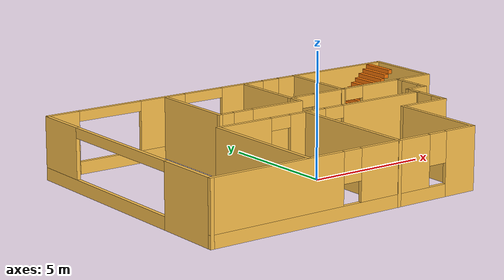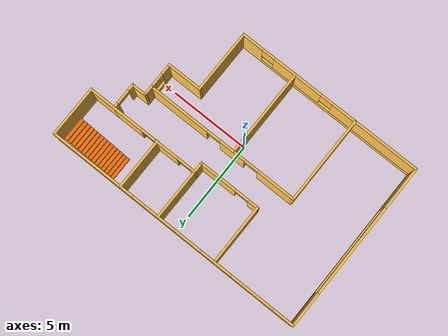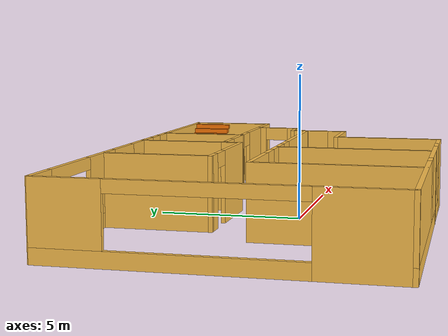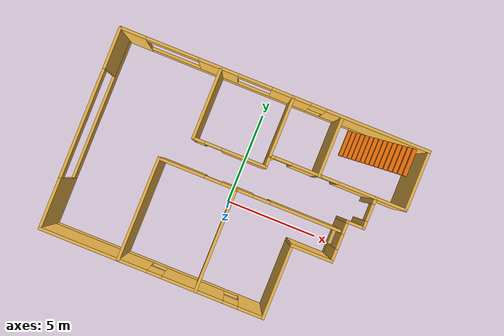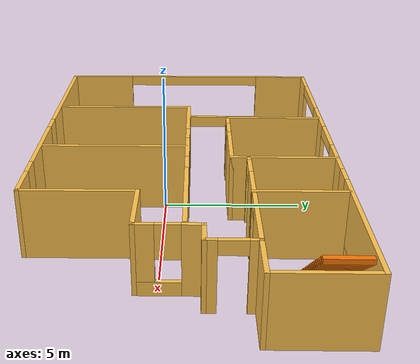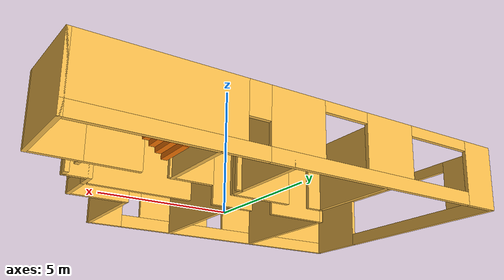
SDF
<?xml version='1.0'?>
<sdf version='1.6'>
  <model name='Simple_Flat'>
    <pose frame=''>0.045 0.765 0 0 -0 0</pose>
    <link name='Stairs_0'>
      <visual name='Stairs_0_Visual_0'>
        <pose frame=''>4.6346 4.48625 0.083333 0 -0 1.5708</pose>
        <geometry>
          <box>
            <size>1.4255 0.2042 0.166667</size>
          </box>
        </geometry>
        <material>
          <script>
            <uri>file://media/materials/scripts/gazebo.material</uri>
            <name>Gazebo/Grey</name>
          </script>
          <ambient>0.996078 0.47451 0.0196078 1</ambient>
        </material>
        <meta>
          <layer>0</layer>
        </meta>
      </visual>
      <collision name='Stairs_0_Collision_0'>
        <geometry>
          <box>
            <size>1.4255 0.2042 0.166667</size>
          </box>
        </geometry>
        <pose frame=''>4.6346 4.48625 0.083333 0 -0 1.5708</pose>
      </collision>
      <visual name='Stairs_0_Visual_1'>
        <pose frame=''>4.8388 4.48625 0.25 0 -0 1.5708</pose>
        <geometry>
          <box>
            <size>1.4255 0.2042 0.166667</size>
          </box>
        </geometry>
        <material>
          <script>
            <uri>file://media/materials/scripts/gazebo.material</uri>
            <name>Gazebo/Grey</name>
          </script>
          <ambient>0.996078 0.47451 0.0196078 1</ambient>
        </material>
        <meta>
          <layer>0</layer>
        </meta>
      </visual>
      <collision name='Stairs_0_Collision_1'>
        <geometry>
          <box>
            <size>1.4255 0.2042 0.166667</size>
          </box>
        </geometry>
        <pose frame=''>4.8388 4.48625 0.25 0 -0 1.5708</pose>
      </collision>
      <visual name='Stairs_0_Visual_2'>
        <pose frame=''>5.043 4.48625 0.416667 0 -0 1.5708</pose>
        <geometry>
          <box>
            <size>1.4255 0.2042 0.166667</size>
          </box>
        </geometry>
        <material>
          <script>
            <uri>file://media/materials/scripts/gazebo.material</uri>
            <name>Gazebo/Grey</name>
          </script>
          <ambient>0.996078 0.47451 0.0196078 1</ambient>
        </material>
        <meta>
          <layer>0</layer>
        </meta>
      </visual>
      <collision name='Stairs_0_Collision_2'>
        <geometry>
          <box>
            <size>1.4255 0.2042 0.166667</size>
          </box>
        </geometry>
        <pose frame=''>5.043 4.48625 0.416667 0 -0 1.5708</pose>
      </collision>
      <visual name='Stairs_0_Visual_3'>
        <pose frame=''>5.2472 4.48625 0.583333 0 -0 1.5708</pose>
        <geometry>
          <box>
            <size>1.4255 0.2042 0.166667</size>
          </box>
        </geometry>
        <material>
          <script>
            <uri>file://media/materials/scripts/gazebo.material</uri>
            <name>Gazebo/Grey</name>
          </script>
          <ambient>0.996078 0.47451 0.0196078 1</ambient>
        </material>
        <meta>
          <layer>0</layer>
        </meta>
      </visual>
      <collision name='Stairs_0_Collision_3'>
        <geometry>
          <box>
            <size>1.4255 0.2042 0.166667</size>
          </box>
        </geometry>
        <pose frame=''>5.2472 4.48625 0.583333 0 -0 1.5708</pose>
      </collision>
      <visual name='Stairs_0_Visual_4'>
        <pose frame=''>5.4514 4.48625 0.75 0 -0 1.5708</pose>
        <geometry>
          <box>
            <size>1.4255 0.2042 0.166667</size>
          </box>
        </geometry>
        <material>
          <script>
            <uri>file://media/materials/scripts/gazebo.material</uri>
            <name>Gazebo/Grey</name>
          </script>
          <ambient>0.996078 0.47451 0.0196078 1</ambient>
        </material>
        <meta>
          <layer>0</layer>
        </meta>
      </visual>
      <collision name='Stairs_0_Collision_4'>
        <geometry>
          <box>
            <size>1.4255 0.2042 0.166667</size>
          </box>
        </geometry>
        <pose frame=''>5.4514 4.48625 0.75 0 -0 1.5708</pose>
      </collision>
      <visual name='Stairs_0_Visual_5'>
        <pose frame=''>5.6556 4.48625 0.916667 0 -0 1.5708</pose>
        <geometry>
          <box>
            <size>1.4255 0.2042 0.166667</size>
          </box>
        </geometry>
        <material>
          <script>
            <uri>file://media/materials/scripts/gazebo.material</uri>
            <name>Gazebo/Grey</name>
          </script>
          <ambient>0.996078 0.47451 0.0196078 1</ambient>
        </material>
        <meta>
          <layer>0</layer>
        </meta>
      </visual>
      <collision name='Stairs_0_Collision_5'>
        <geometry>
          <box>
            <size>1.4255 0.2042 0.166667</size>
          </box>
        </geometry>
        <pose frame=''>5.6556 4.48625 0.916667 0 -0 1.5708</pose>
      </collision>
      <visual name='Stairs_0_Visual_6'>
        <pose frame=''>5.8598 4.48625 1.08333 0 -0 1.5708</pose>
        <geometry>
          <box>
            <size>1.4255 0.2042 0.166667</size>
          </box>
        </geometry>
        <material>
          <script>
            <uri>file://media/materials/scripts/gazebo.material</uri>
            <name>Gazebo/Grey</name>
          </script>
          <ambient>0.996078 0.47451 0.0196078 1</ambient>
        </material>
        <meta>
          <layer>0</layer>
        </meta>
      </visual>
      <collision name='Stairs_0_Collision_6'>
        <geometry>
          <box>
            <size>1.4255 0.2042 0.166667</size>
          </box>
        </geometry>
        <pose frame=''>5.8598 4.48625 1.08333 0 -0 1.5708</pose>
      </collision>
      <visual name='Stairs_0_Visual_7'>
        <pose frame=''>6.064 4.48625 1.25 0 -0 1.5708</pose>
        <geometry>
          <box>
            <size>1.4255 0.2042 0.166667</size>
          </box>
        </geometry>
        <material>
          <script>
            <uri>file://media/materials/scripts/gazebo.material</uri>
            <name>Gazebo/Grey</name>
          </script>
          <ambient>0.996078 0.47451 0.0196078 1</ambient>
        </material>
        <meta>
          <layer>0</layer>
        </meta>
      </visual>
      <collision name='Stairs_0_Collision_7'>
        <geometry>
          <box>
            <size>1.4255 0.2042 0.166667</size>
          </box>
        </geometry>
        <pose frame=''>6.064 4.48625 1.25 0 -0 1.5708</pose>
      </collision>
      <visual name='Stairs_0_Visual_8'>
        <pose frame=''>6.2682 4.48625 1.41667 0 -0 1.5708</pose>
        <geometry>
          <box>
            <size>1.4255 0.2042 0.166667</size>
          </box>
        </geometry>
        <material>
          <script>
            <uri>file://media/materials/scripts/gazebo.material</uri>
            <name>Gazebo/Grey</name>
          </script>
          <ambient>0.996078 0.47451 0.0196078 1</ambient>
        </material>
        <meta>
          <layer>0</layer>
        </meta>
      </visual>
      <collision name='Stairs_0_Collision_8'>
        <geometry>
          <box>
            <size>1.4255 0.2042 0.166667</size>
          </box>
        </geometry>
        <pose frame=''>6.2682 4.48625 1.41667 0 -0 1.5708</pose>
      </collision>
      <visual name='Stairs_0_Visual_9'>
        <pose frame=''>6.4724 4.48625 1.58333 0 -0 1.5708</pose>
        <geometry>
          <box>
            <size>1.4255 0.2042 0.166667</size>
          </box>
        </geometry>
        <material>
          <script>
            <uri>file://media/materials/scripts/gazebo.material</uri>
            <name>Gazebo/Grey</name>
          </script>
          <ambient>0.996078 0.47451 0.0196078 1</ambient>
        </material>
        <meta>
          <layer>0</layer>
        </meta>
      </visual>
      <collision name='Stairs_0_Collision_9'>
        <geometry>
          <box>
            <size>1.4255 0.2042 0.166667</size>
          </box>
        </geometry>
        <pose frame=''>6.4724 4.48625 1.58333 0 -0 1.5708</pose>
      </collision>
      <visual name='Stairs_0_Visual_10'>
        <pose frame=''>6.6766 4.48625 1.75 0 -0 1.5708</pose>
        <geometry>
          <box>
            <size>1.4255 0.2042 0.166667</size>
          </box>
        </geometry>
        <material>
          <script>
            <uri>file://media/materials/scripts/gazebo.material</uri>
            <name>Gazebo/Grey</name>
          </script>
          <ambient>0.996078 0.47451 0.0196078 1</ambient>
        </material>
        <meta>
          <layer>0</layer>
        </meta>
      </visual>
      <collision name='Stairs_0_Collision_10'>
        <geometry>
          <box>
            <size>1.4255 0.2042 0.166667</size>
          </box>
        </geometry>
        <pose frame=''>6.6766 4.48625 1.75 0 -0 1.5708</pose>
      </collision>
      <visual name='Stairs_0_Visual_11'>
        <pose frame=''>6.8808 4.48625 1.91667 0 -0 1.5708</pose>
        <geometry>
          <box>
            <size>1.4255 0.2042 0.166667</size>
          </box>
        </geometry>
        <material>
          <script>
            <uri>file://media/materials/scripts/gazebo.material</uri>
            <name>Gazebo/Grey</name>
          </script>
          <ambient>0.996078 0.47451 0.0196078 1</ambient>
        </material>
        <meta>
          <layer>0</layer>
        </meta>
      </visual>
      <collision name='Stairs_0_Collision_11'>
        <geometry>
          <box>
            <size>1.4255 0.2042 0.166667</size>
          </box>
        </geometry>
        <pose frame=''>6.8808 4.48625 1.91667 0 -0 1.5708</pose>
      </collision>
      <visual name='Stairs_0_Visual_12'>
        <pose frame=''>7.085 4.48625 2.08333 0 -0 1.5708</pose>
        <geometry>
          <box>
            <size>1.4255 0.2042 0.166667</size>
          </box>
        </geometry>
        <material>
          <script>
            <uri>file://media/materials/scripts/gazebo.material</uri>
            <name>Gazebo/Grey</name>
          </script>
          <ambient>0.996078 0.47451 0.0196078 1</ambient>
        </material>
        <meta>
          <layer>0</layer>
        </meta>
      </visual>
      <collision name='Stairs_0_Collision_12'>
        <geometry>
          <box>
            <size>1.4255 0.2042 0.166667</size>
          </box>
        </geometry>
        <pose frame=''>7.085 4.48625 2.08333 0 -0 1.5708</pose>
      </collision>
      <visual name='Stairs_0_Visual_13'>
        <pose frame=''>7.2892 4.48625 2.25 0 -0 1.5708</pose>
        <geometry>
          <box>
            <size>1.4255 0.2042 0.166667</size>
          </box>
        </geometry>
        <material>
          <script>
            <uri>file://media/materials/scripts/gazebo.material</uri>
            <name>Gazebo/Grey</name>
          </script>
          <ambient>0.996078 0.47451 0.0196078 1</ambient>
        </material>
        <meta>
          <layer>0</layer>
        </meta>
      </visual>
      <collision name='Stairs_0_Collision_13'>
        <geometry>
          <box>
            <size>1.4255 0.2042 0.166667</size>
          </box>
        </geometry>
        <pose frame=''>7.2892 4.48625 2.25 0 -0 1.5708</pose>
      </collision>
      <visual name='Stairs_0_Visual_14'>
        <pose frame=''>7.4934 4.48625 2.41667 0 -0 1.5708</pose>
        <geometry>
          <box>
            <size>1.4255 0.2042 0.166667</size>
          </box>
        </geometry>
        <material>
          <script>
            <uri>file://media/materials/scripts/gazebo.material</uri>
            <name>Gazebo/Grey</name>
          </script>
          <ambient>0.996078 0.47451 0.0196078 1</ambient>
        </material>
        <meta>
          <layer>0</layer>
        </meta>
      </visual>
      <collision name='Stairs_0_Collision_14'>
        <geometry>
          <box>
            <size>1.4255 0.2042 0.166667</size>
          </box>
        </geometry>
        <pose frame=''>7.4934 4.48625 2.41667 0 -0 1.5708</pose>
      </collision>
    </link>
    <link name='Wall_0'>
      <pose frame=''>0.025 5.3315 0 0 -0 0</pose>
      <visual name='Wall_0_Visual_0'>
        <pose frame=''>-7.5555 0 1.25 0 -0 0</pose>
        <geometry>
          <box>
            <size>1.389 0.15 2.5</size>
          </box>
        </geometry>
        <material>
          <script>
            <uri>file://media/materials/scripts/gazebo.material</uri>
            <name>Gazebo/Grey</name>
          </script>
          <ambient>1 0.764706 0.305882 1</ambient>
        </material>
        <meta>
          <layer>0</layer>
        </meta>
      </visual>
      <collision name='Wall_0_Collision_0'>
        <geometry>
          <box>
            <size>1.389 0.15 2.5</size>
          </box>
        </geometry>
        <pose frame=''>-7.5555 0 1.25 0 -0 0</pose>
      </collision>
      <visual name='Wall_0_Visual_1'>
        <pose frame=''>-2.474 0 0.25 0 -0 0</pose>
        <geometry>
          <box>
            <size>8.774 0.15 0.5</size>
          </box>
        </geometry>
        <material>
          <script>
            <uri>file://media/materials/scripts/gazebo.material</uri>
            <name>Gazebo/Grey</name>
          </script>
          <ambient>1 0.764706 0.305882 1</ambient>
        </material>
        <meta>
          <layer>0</layer>
        </meta>
      </visual>
      <collision name='Wall_0_Collision_1'>
        <geometry>
          <box>
            <size>8.774 0.15 0.5</size>
          </box>
        </geometry>
        <pose frame=''>-2.474 0 0.25 0 -0 0</pose>
      </collision>
      <visual name='Wall_0_Visual_2'>
        <pose frame=''>5.0815 0 0.25 0 -0 0</pose>
        <geometry>
          <box>
            <size>6.337 0.15 0.5</size>
          </box>
        </geometry>
        <material>
          <script>
            <uri>file://media/materials/scripts/gazebo.material</uri>
            <name>Gazebo/Grey</name>
          </script>
          <ambient>1 0.764706 0.305882 1</ambient>
        </material>
        <meta>
          <layer>0</layer>
        </meta>
      </visual>
      <collision name='Wall_0_Collision_2'>
        <geometry>
          <box>
            <size>6.337 0.15 0.5</size>
          </box>
        </geometry>
        <pose frame=''>5.0815 0 0.25 0 -0 0</pose>
      </collision>
      <visual name='Wall_0_Visual_3'>
        <pose frame=''>5.4815 0 1.5 0 -0 0</pose>
        <geometry>
          <box>
            <size>5.537 0.15 2</size>
          </box>
        </geometry>
        <material>
          <script>
            <uri>file://media/materials/scripts/gazebo.material</uri>
            <name>Gazebo/Grey</name>
          </script>
          <ambient>1 0.764706 0.305882 1</ambient>
        </material>
        <meta>
          <layer>0</layer>
        </meta>
      </visual>
      <collision name='Wall_0_Collision_3'>
        <geometry>
          <box>
            <size>5.537 0.15 2</size>
          </box>
        </geometry>
        <pose frame=''>5.4815 0 1.5 0 -0 0</pose>
      </collision>
      <visual name='Wall_0_Visual_4'>
        <pose frame=''>-3.0145 0 1.5 0 -0 0</pose>
        <geometry>
          <box>
            <size>2.093 0.15 2</size>
          </box>
        </geometry>
        <material>
          <script>
            <uri>file://media/materials/scripts/gazebo.material</uri>
            <name>Gazebo/Grey</name>
          </script>
          <ambient>1 0.764706 0.305882 1</ambient>
        </material>
        <meta>
          <layer>0</layer>
        </meta>
      </visual>
      <collision name='Wall_0_Collision_4'>
        <geometry>
          <box>
            <size>2.093 0.15 2</size>
          </box>
        </geometry>
        <pose frame=''>-3.0145 0 1.5 0 -0 0</pose>
      </collision>
      <visual name='Wall_0_Visual_5'>
        <pose frame=''>0.8725 0 1.5 0 -0 0</pose>
        <geometry>
          <box>
            <size>2.081 0.15 2</size>
          </box>
        </geometry>
        <material>
          <script>
            <uri>file://media/materials/scripts/gazebo.material</uri>
            <name>Gazebo/Grey</name>
          </script>
          <ambient>1 0.764706 0.305882 1</ambient>
        </material>
        <meta>
          <layer>0</layer>
        </meta>
      </visual>
      <collision name='Wall_0_Collision_5'>
        <geometry>
          <box>
            <size>2.081 0.15 2</size>
          </box>
        </geometry>
        <pose frame=''>0.8725 0 1.5 0 -0 0</pose>
      </collision>
      <visual name='Wall_0_Visual_6'>
        <pose frame=''>0.8725 0 1.5 0 -0 0</pose>
        <geometry>
          <box>
            <size>2.081 0.15 2</size>
          </box>
        </geometry>
        <material>
          <script>
            <uri>file://media/materials/scripts/gazebo.material</uri>
            <name>Gazebo/Grey</name>
          </script>
          <ambient>1 0.764706 0.305882 1</ambient>
        </material>
        <meta>
          <layer>0</layer>
        </meta>
      </visual>
      <collision name='Wall_0_Collision_6'>
        <geometry>
          <box>
            <size>2.081 0.15 2</size>
          </box>
        </geometry>
        <pose frame=''>0.8725 0 1.5 0 -0 0</pose>
      </collision>
      <visual name='Wall_0_Visual_7'>
        <pose frame=''>2.313 0 1.9 0 -0 0</pose>
        <geometry>
          <box>
            <size>0.8 0.15 1.2</size>
          </box>
        </geometry>
        <material>
          <script>
            <uri>file://media/materials/scripts/gazebo.material</uri>
            <name>Gazebo/Grey</name>
          </script>
          <ambient>1 0.764706 0.305882 1</ambient>
        </material>
        <meta>
          <layer>0</layer>
        </meta>
      </visual>
      <collision name='Wall_0_Collision_7'>
        <geometry>
          <box>
            <size>0.8 0.15 1.2</size>
          </box>
        </geometry>
        <pose frame=''>2.313 0 1.9 0 -0 0</pose>
      </collision>
      <visual name='Wall_0_Visual_8'>
        <pose frame=''>2.313 0 1.9 0 -0 0</pose>
        <geometry>
          <box>
            <size>0.8 0.15 1.2</size>
          </box>
        </geometry>
        <material>
          <script>
            <uri>file://media/materials/scripts/gazebo.material</uri>
            <name>Gazebo/Grey</name>
          </script>
          <ambient>1 0.764706 0.305882 1</ambient>
        </material>
        <meta>
          <layer>0</layer>
        </meta>
      </visual>
      <collision name='Wall_0_Collision_8'>
        <geometry>
          <box>
            <size>0.8 0.15 1.2</size>
          </box>
        </geometry>
        <pose frame=''>2.313 0 1.9 0 -0 0</pose>
      </collision>
      <visual name='Wall_0_Visual_9'>
        <pose frame=''>-5.461 0 2.3 0 -0 0</pose>
        <geometry>
          <box>
            <size>2.8 0.15 0.4</size>
          </box>
        </geometry>
        <material>
          <script>
            <uri>file://media/materials/scripts/gazebo.material</uri>
            <name>Gazebo/Grey</name>
          </script>
          <ambient>1 0.764706 0.305882 1</ambient>
        </material>
        <meta>
          <layer>0</layer>
        </meta>
      </visual>
      <collision name='Wall_0_Collision_9'>
        <geometry>
          <box>
            <size>2.8 0.15 0.4</size>
          </box>
        </geometry>
        <pose frame=''>-5.461 0 2.3 0 -0 0</pose>
      </collision>
      <visual name='Wall_0_Visual_10'>
        <pose frame=''>-1.068 0 2.3 0 -0 0</pose>
        <geometry>
          <box>
            <size>1.8 0.15 0.4</size>
          </box>
        </geometry>
        <material>
          <script>
            <uri>file://media/materials/scripts/gazebo.material</uri>
            <name>Gazebo/Grey</name>
          </script>
          <ambient>1 0.764706 0.305882 1</ambient>
        </material>
        <meta>
          <layer>0</layer>
        </meta>
      </visual>
      <collision name='Wall_0_Collision_10'>
        <geometry>
          <box>
            <size>1.8 0.15 0.4</size>
          </box>
        </geometry>
        <pose frame=''>-1.068 0 2.3 0 -0 0</pose>
      </collision>
    </link>
    <link name='Wall_1'>
      <collision name='Wall_1_Collision'>
        <geometry>
          <box>
            <size>3.25 0.15 2.5</size>
          </box>
        </geometry>
        <pose frame=''>0 0 1.25 0 -0 0</pose>
      </collision>
      <visual name='Wall_1_Visual'>
        <pose frame=''>0 0 1.25 0 -0 0</pose>
        <geometry>
          <box>
            <size>3.25 0.15 2.5</size>
          </box>
        </geometry>
        <material>
          <script>
            <uri>file://media/materials/scripts/gazebo.material</uri>
            <name>Gazebo/Grey</name>
          </script>
          <ambient>1 0.764706 0.305882 1</ambient>
        </material>
        <meta>
          <layer>0</layer>
        </meta>
      </visual>
      <pose frame=''>8.2 3.7815 0 0 0 -1.5708</pose>
    </link>
    <link name='Wall_11'>
      <collision name='Wall_11_Collision'>
        <geometry>
          <box>
            <size>5.5 0.15 2.5</size>
          </box>
        </geometry>
        <pose frame=''>0 0 1.25 0 -0 0</pose>
      </collision>
      <visual name='Wall_11_Visual'>
        <pose frame=''>0 0 1.25 0 -0 0</pose>
        <geometry>
          <box>
            <size>5.5 0.15 2.5</size>
          </box>
        </geometry>
        <material>
          <script>
            <uri>file://media/materials/scripts/gazebo.material</uri>
            <name>Gazebo/Grey</name>
          </script>
          <ambient>1 0.764706 0.305882 1</ambient>
        </material>
        <meta>
          <layer>0</layer>
        </meta>
      </visual>
      <pose frame=''>-4.0445 -2.608 0 0 -0 1.5708</pose>
    </link>
    <link name='Wall_12'>
      <pose frame=''>0.7555 0.067 0 0 -0 0</pose>
      <visual name='Wall_12_Visual_0'>
        <pose frame=''>-3.63075 0 1.25 0 -0 0</pose>
        <geometry>
          <box>
            <size>2.4885 0.15 2.5</size>
          </box>
        </geometry>
        <material>
          <script>
            <uri>file://media/materials/scripts/gazebo.material</uri>
            <name>Gazebo/Grey</name>
          </script>
          <ambient>1 0.764706 0.305882 1</ambient>
        </material>
        <meta>
          <layer>0</layer>
        </meta>
      </visual>
      <collision name='Wall_12_Collision_0'>
        <geometry>
          <box>
            <size>2.4885 0.15 2.5</size>
          </box>
        </geometry>
        <pose frame=''>-3.63075 0 1.25 0 -0 0</pose>
      </collision>
      <visual name='Wall_12_Visual_1'>
        <pose frame=''>-0.637 0 1.25 0 -0 0</pose>
        <geometry>
          <box>
            <size>1.699 0.15 2.5</size>
          </box>
        </geometry>
        <material>
          <script>
            <uri>file://media/materials/scripts/gazebo.material</uri>
            <name>Gazebo/Grey</name>
          </script>
          <ambient>1 0.764706 0.305882 1</ambient>
        </material>
        <meta>
          <layer>0</layer>
        </meta>
      </visual>
      <collision name='Wall_12_Collision_1'>
        <geometry>
          <box>
            <size>1.699 0.15 2.5</size>
          </box>
        </geometry>
        <pose frame=''>-0.637 0 1.25 0 -0 0</pose>
      </collision>
      <visual name='Wall_12_Visual_2'>
        <pose frame=''>2.99375 0 1.25 0 -0 0</pose>
        <geometry>
          <box>
            <size>3.7625 0.15 2.5</size>
          </box>
        </geometry>
        <material>
          <script>
            <uri>file://media/materials/scripts/gazebo.material</uri>
            <name>Gazebo/Grey</name>
          </script>
          <ambient>1 0.764706 0.305882 1</ambient>
        </material>
        <meta>
          <layer>0</layer>
        </meta>
      </visual>
      <collision name='Wall_12_Collision_2'>
        <geometry>
          <box>
            <size>3.7625 0.15 2.5</size>
          </box>
        </geometry>
        <pose frame=''>2.99375 0 1.25 0 -0 0</pose>
      </collision>
      <visual name='Wall_12_Visual_3'>
        <pose frame=''>-1.9365 0 2.25 0 -0 0</pose>
        <geometry>
          <box>
            <size>0.9 0.15 0.5</size>
          </box>
        </geometry>
        <material>
          <script>
            <uri>file://media/materials/scripts/gazebo.material</uri>
            <name>Gazebo/Grey</name>
          </script>
          <ambient>1 0.764706 0.305882 1</ambient>
        </material>
        <meta>
          <layer>0</layer>
        </meta>
      </visual>
      <collision name='Wall_12_Collision_3'>
        <geometry>
          <box>
            <size>0.9 0.15 0.5</size>
          </box>
        </geometry>
        <pose frame=''>-1.9365 0 2.25 0 -0 0</pose>
      </collision>
      <visual name='Wall_12_Visual_4'>
        <pose frame=''>0.6625 0 2.25 0 -0 0</pose>
        <geometry>
          <box>
            <size>0.9 0.15 0.5</size>
          </box>
        </geometry>
        <material>
          <script>
            <uri>file://media/materials/scripts/gazebo.material</uri>
            <name>Gazebo/Grey</name>
          </script>
          <ambient>1 0.764706 0.305882 1</ambient>
        </material>
        <meta>
          <layer>0</layer>
        </meta>
      </visual>
      <collision name='Wall_12_Collision_4'>
        <geometry>
          <box>
            <size>0.9 0.15 0.5</size>
          </box>
        </geometry>
        <pose frame=''>0.6625 0 2.25 0 -0 0</pose>
      </collision>
    </link>
    <link name='Wall_14'>
      <collision name='Wall_14_Collision'>
        <geometry>
          <box>
            <size>5.5 0.15 2.5</size>
          </box>
        </geometry>
        <pose frame=''>0 0 1.25 0 -0 0</pose>
      </collision>
      <visual name='Wall_14_Visual'>
        <pose frame=''>0 0 1.25 0 -0 0</pose>
        <geometry>
          <box>
            <size>5.5 0.15 2.5</size>
          </box>
        </geometry>
        <material>
          <script>
            <uri>file://media/materials/scripts/gazebo.material</uri>
            <name>Gazebo/Grey</name>
          </script>
          <ambient>1 0.764706 0.305882 1</ambient>
        </material>
        <meta>
          <layer>0</layer>
        </meta>
      </visual>
      <pose frame=''>0.061 -2.6565 0 0 0 -1.5708</pose>
    </link>
    <link name='Wall_16'>
      <pose frame=''>3.8 2.2315 0 0 -0 3.14159</pose>
      <visual name='Wall_16_Visual_0'>
        <pose frame=''>-1.863 0 1.25 0 -0 0</pose>
        <geometry>
          <box>
            <size>2.024 0.15 2.5</size>
          </box>
        </geometry>
        <material>
          <script>
            <uri>file://media/materials/scripts/gazebo.material</uri>
            <name>Gazebo/Grey</name>
          </script>
          <ambient>1 0.764706 0.305882 1</ambient>
        </material>
        <meta>
          <layer>0</layer>
        </meta>
      </visual>
      <collision name='Wall_16_Collision_0'>
        <geometry>
          <box>
            <size>2.024 0.15 2.5</size>
          </box>
        </geometry>
        <pose frame=''>-1.863 0 1.25 0 -0 0</pose>
      </collision>
      <visual name='Wall_16_Visual_1'>
        <pose frame=''>0.84675 0 1.25 0 -0 0</pose>
        <geometry>
          <box>
            <size>1.5955 0.15 2.5</size>
          </box>
        </geometry>
        <material>
          <script>
            <uri>file://media/materials/scripts/gazebo.material</uri>
            <name>Gazebo/Grey</name>
          </script>
          <ambient>1 0.764706 0.305882 1</ambient>
        </material>
        <meta>
          <layer>0</layer>
        </meta>
      </visual>
      <collision name='Wall_16_Collision_1'>
        <geometry>
          <box>
            <size>1.5955 0.15 2.5</size>
          </box>
        </geometry>
        <pose frame=''>0.84675 0 1.25 0 -0 0</pose>
      </collision>
      <visual name='Wall_16_Visual_2'>
        <pose frame=''>2.70975 0 1.25 0 -0 0</pose>
        <geometry>
          <box>
            <size>0.3305 0.15 2.5</size>
          </box>
        </geometry>
        <material>
          <script>
            <uri>file://media/materials/scripts/gazebo.material</uri>
            <name>Gazebo/Grey</name>
          </script>
          <ambient>1 0.764706 0.305882 1</ambient>
        </material>
        <meta>
          <layer>0</layer>
        </meta>
      </visual>
      <collision name='Wall_16_Collision_2'>
        <geometry>
          <box>
            <size>0.3305 0.15 2.5</size>
          </box>
        </geometry>
        <pose frame=''>2.70975 0 1.25 0 -0 0</pose>
      </collision>
      <visual name='Wall_16_Visual_3'>
        <pose frame=''>-0.401 0 2.25 0 -0 0</pose>
        <geometry>
          <box>
            <size>0.9 0.15 0.5</size>
          </box>
        </geometry>
        <material>
          <script>
            <uri>file://media/materials/scripts/gazebo.material</uri>
            <name>Gazebo/Grey</name>
          </script>
          <ambient>1 0.764706 0.305882 1</ambient>
        </material>
        <meta>
          <layer>0</layer>
        </meta>
      </visual>
      <collision name='Wall_16_Collision_3'>
        <geometry>
          <box>
            <size>0.9 0.15 0.5</size>
          </box>
        </geometry>
        <pose frame=''>-0.401 0 2.25 0 -0 0</pose>
      </collision>
      <visual name='Wall_16_Visual_4'>
        <pose frame=''>2.0945 0 2.25 0 -0 0</pose>
        <geometry>
          <box>
            <size>0.9 0.15 0.5</size>
          </box>
        </geometry>
        <material>
          <script>
            <uri>file://media/materials/scripts/gazebo.material</uri>
            <name>Gazebo/Grey</name>
          </script>
          <ambient>1 0.764706 0.305882 1</ambient>
        </material>
        <meta>
          <layer>0</layer>
        </meta>
      </visual>
      <collision name='Wall_16_Collision_4'>
        <geometry>
          <box>
            <size>0.9 0.15 0.5</size>
          </box>
        </geometry>
        <pose frame=''>2.0945 0 2.25 0 -0 0</pose>
      </collision>
    </link>
    <link name='Wall_17'>
      <collision name='Wall_17_Collision'>
        <geometry>
          <box>
            <size>3.25 0.15 2.5</size>
          </box>
        </geometry>
        <pose frame=''>0 0 1.25 0 -0 0</pose>
      </collision>
      <visual name='Wall_17_Visual'>
        <pose frame=''>0 0 1.25 0 -0 0</pose>
        <geometry>
          <box>
            <size>3.25 0.15 2.5</size>
          </box>
        </geometry>
        <material>
          <script>
            <uri>file://media/materials/scripts/gazebo.material</uri>
            <name>Gazebo/Grey</name>
          </script>
          <ambient>1 0.764706 0.305882 1</ambient>
        </material>
        <meta>
          <layer>0</layer>
        </meta>
      </visual>
      <pose frame=''>1 3.7815 0 0 -0 1.5708</pose>
    </link>
    <link name='Wall_19'>
      <collision name='Wall_19_Collision'>
        <geometry>
          <box>
            <size>3.25 0.15 2.5</size>
          </box>
        </geometry>
        <pose frame=''>0 0 1.25 0 -0 0</pose>
      </collision>
      <visual name='Wall_19_Visual'>
        <pose frame=''>0 0 1.25 0 -0 0</pose>
        <geometry>
          <box>
            <size>3.25 0.15 2.5</size>
          </box>
        </geometry>
        <material>
          <script>
            <uri>file://media/materials/scripts/gazebo.material</uri>
            <name>Gazebo/Grey</name>
          </script>
          <ambient>1 0.764706 0.305882 1</ambient>
        </material>
        <meta>
          <layer>0</layer>
        </meta>
      </visual>
      <pose frame=''>3.603 3.765 0 0 -0 1.5708</pose>
    </link>
    <link name='Wall_2'>
      <collision name='Wall_2_Collision'>
        <geometry>
          <box>
            <size>1.75 0.15 2.5</size>
          </box>
        </geometry>
        <pose frame=''>0 0 1.25 0 -0 0</pose>
      </collision>
      <visual name='Wall_2_Visual'>
        <pose frame=''>0 0 1.25 0 -0 0</pose>
        <geometry>
          <box>
            <size>1.75 0.15 2.5</size>
          </box>
        </geometry>
        <material>
          <script>
            <uri>file://media/materials/scripts/gazebo.material</uri>
            <name>Gazebo/Grey</name>
          </script>
          <ambient>1 0.764706 0.305882 1</ambient>
        </material>
        <meta>
          <layer>0</layer>
        </meta>
      </visual>
      <pose frame=''>7.4 2.2315 0 0 -0 3.14159</pose>
    </link>
    <link name='Wall_21'>
      <collision name='Wall_21_Collision'>
        <geometry>
          <box>
            <size>0.75 0.15 2.5</size>
          </box>
        </geometry>
        <pose frame=''>0 0 1.25 0 -0 0</pose>
      </collision>
      <visual name='Wall_21_Visual'>
        <pose frame=''>0 0 1.25 0 -0 0</pose>
        <geometry>
          <box>
            <size>0.75 0.15 2.5</size>
          </box>
        </geometry>
        <material>
          <script>
            <uri>file://media/materials/scripts/gazebo.material</uri>
            <name>Gazebo/Grey</name>
          </script>
          <ambient>1 0.764706 0.305882 1</ambient>
        </material>
        <meta>
          <layer>0</layer>
        </meta>
      </visual>
      <pose frame=''>1 1.9315 0 0 0 -1.5708</pose>
    </link>
    <link name='Wall_22'>
      <pose frame=''>-0.925 1.6315 0 0 -0 3.14159</pose>
      <visual name='Wall_22_Visual_0'>
        <pose frame=''>-0.798 0 1.25 0 -0 0</pose>
        <geometry>
          <box>
            <size>2.404 0.15 2.5</size>
          </box>
        </geometry>
        <material>
          <script>
            <uri>file://media/materials/scripts/gazebo.material</uri>
            <name>Gazebo/Grey</name>
          </script>
          <ambient>1 0.764706 0.305882 1</ambient>
        </material>
        <meta>
          <layer>0</layer>
        </meta>
      </visual>
      <collision name='Wall_22_Collision_0'>
        <geometry>
          <box>
            <size>2.404 0.15 2.5</size>
          </box>
        </geometry>
        <pose frame=''>-0.798 0 1.25 0 -0 0</pose>
      </collision>
      <visual name='Wall_22_Visual_1'>
        <pose frame=''>1.652 0 1.25 0 -0 0</pose>
        <geometry>
          <box>
            <size>0.696 0.15 2.5</size>
          </box>
        </geometry>
        <material>
          <script>
            <uri>file://media/materials/scripts/gazebo.material</uri>
            <name>Gazebo/Grey</name>
          </script>
          <ambient>1 0.764706 0.305882 1</ambient>
        </material>
        <meta>
          <layer>0</layer>
        </meta>
      </visual>
      <collision name='Wall_22_Collision_1'>
        <geometry>
          <box>
            <size>0.696 0.15 2.5</size>
          </box>
        </geometry>
        <pose frame=''>1.652 0 1.25 0 -0 0</pose>
      </collision>
      <visual name='Wall_22_Visual_2'>
        <pose frame=''>0.854 0 2.25 0 -0 0</pose>
        <geometry>
          <box>
            <size>0.9 0.15 0.5</size>
          </box>
        </geometry>
        <material>
          <script>
            <uri>file://media/materials/scripts/gazebo.material</uri>
            <name>Gazebo/Grey</name>
          </script>
          <ambient>1 0.764706 0.305882 1</ambient>
        </material>
        <meta>
          <layer>0</layer>
        </meta>
      </visual>
      <collision name='Wall_22_Collision_2'>
        <geometry>
          <box>
            <size>0.9 0.15 0.5</size>
          </box>
        </geometry>
        <pose frame=''>0.854 0 2.25 0 -0 0</pose>
      </collision>
    </link>
    <link name='Wall_23'>
      <collision name='Wall_23_Collision'>
        <geometry>
          <box>
            <size>3.75 0.15 2.5</size>
          </box>
        </geometry>
        <pose frame=''>0 0 1.25 0 -0 0</pose>
      </collision>
      <visual name='Wall_23_Visual'>
        <pose frame=''>0 0 1.25 0 -0 0</pose>
        <geometry>
          <box>
            <size>3.75 0.15 2.5</size>
          </box>
        </geometry>
        <material>
          <script>
            <uri>file://media/materials/scripts/gazebo.material</uri>
            <name>Gazebo/Grey</name>
          </script>
          <ambient>1 0.764706 0.305882 1</ambient>
        </material>
        <meta>
          <layer>0</layer>
        </meta>
      </visual>
      <pose frame=''>-2.85 3.4315 0 0 -0 1.5708</pose>
    </link>
    <link name='Wall_3'>
      <pose frame=''>6.6 1.4315 0 0 0 -1.5708</pose>
      <visual name='Wall_3_Visual_0'>
        <pose frame=''>-0.67475 0 1.25 0 -0 0</pose>
        <geometry>
          <box>
            <size>0.4005 0.15 2.5</size>
          </box>
        </geometry>
        <material>
          <script>
            <uri>file://media/materials/scripts/gazebo.material</uri>
            <name>Gazebo/Grey</name>
          </script>
          <ambient>1 0.764706 0.305882 1</ambient>
        </material>
        <meta>
          <layer>0</layer>
        </meta>
      </visual>
      <collision name='Wall_3_Collision_0'>
        <geometry>
          <box>
            <size>0.4005 0.15 2.5</size>
          </box>
        </geometry>
        <pose frame=''>-0.67475 0 1.25 0 -0 0</pose>
      </collision>
      <visual name='Wall_3_Visual_1'>
        <pose frame=''>0.65025 0 1.25 0 -0 0</pose>
        <geometry>
          <box>
            <size>0.4495 0.15 2.5</size>
          </box>
        </geometry>
        <material>
          <script>
            <uri>file://media/materials/scripts/gazebo.material</uri>
            <name>Gazebo/Grey</name>
          </script>
          <ambient>1 0.764706 0.305882 1</ambient>
        </material>
        <meta>
          <layer>0</layer>
        </meta>
      </visual>
      <collision name='Wall_3_Collision_1'>
        <geometry>
          <box>
            <size>0.4495 0.15 2.5</size>
          </box>
        </geometry>
        <pose frame=''>0.65025 0 1.25 0 -0 0</pose>
      </collision>
      <visual name='Wall_3_Visual_2'>
        <pose frame=''>-0.0245 0 2.25 0 -0 0</pose>
        <geometry>
          <box>
            <size>0.9 0.15 0.5</size>
          </box>
        </geometry>
        <material>
          <script>
            <uri>file://media/materials/scripts/gazebo.material</uri>
            <name>Gazebo/Grey</name>
          </script>
          <ambient>1 0.764706 0.305882 1</ambient>
        </material>
        <meta>
          <layer>0</layer>
        </meta>
      </visual>
      <collision name='Wall_3_Collision_2'>
        <geometry>
          <box>
            <size>0.9 0.15 0.5</size>
          </box>
        </geometry>
        <pose frame=''>-0.0245 0 2.25 0 -0 0</pose>
      </collision>
    </link>
    <link name='Wall_4'>
      <collision name='Wall_4_Collision'>
        <geometry>
          <box>
            <size>1 0.15 2.5</size>
          </box>
        </geometry>
        <pose frame=''>0 0 1.25 0 -0 0</pose>
      </collision>
      <visual name='Wall_4_Visual'>
        <pose frame=''>0 0 1.25 0 -0 0</pose>
        <geometry>
          <box>
            <size>1 0.15 2.5</size>
          </box>
        </geometry>
        <material>
          <script>
            <uri>file://media/materials/scripts/gazebo.material</uri>
            <name>Gazebo/Grey</name>
          </script>
          <ambient>1 0.764706 0.305882 1</ambient>
        </material>
        <meta>
          <layer>0</layer>
        </meta>
      </visual>
      <pose frame=''>6.175 0.6315 0 0 -0 3.14159</pose>
    </link>
    <link name='Wall_5'>
      <pose frame=''>5.75 -0.4185 0 0 0 -1.5708</pose>
      <visual name='Wall_5_Visual_0'>
        <pose frame=''>-0.75675 0 1.25 0 -0 0</pose>
        <geometry>
          <box>
            <size>0.7365 0.15 2.5</size>
          </box>
        </geometry>
        <material>
          <script>
            <uri>file://media/materials/scripts/gazebo.material</uri>
            <name>Gazebo/Grey</name>
          </script>
          <ambient>1 0.764706 0.305882 1</ambient>
        </material>
        <meta>
          <layer>0</layer>
        </meta>
      </visual>
      <collision name='Wall_5_Collision_0'>
        <geometry>
          <box>
            <size>0.7365 0.15 2.5</size>
          </box>
        </geometry>
        <pose frame=''>-0.75675 0 1.25 0 -0 0</pose>
      </collision>
      <visual name='Wall_5_Visual_1'>
        <pose frame=''>0.36825 0 0.25 0 -0 0</pose>
        <geometry>
          <box>
            <size>1.5135 0.15 0.5</size>
          </box>
        </geometry>
        <material>
          <script>
            <uri>file://media/materials/scripts/gazebo.material</uri>
            <name>Gazebo/Grey</name>
          </script>
          <ambient>1 0.764706 0.305882 1</ambient>
        </material>
        <meta>
          <layer>0</layer>
        </meta>
      </visual>
      <collision name='Wall_5_Collision_1'>
        <geometry>
          <box>
            <size>1.5135 0.15 0.5</size>
          </box>
        </geometry>
        <pose frame=''>0.36825 0 0.25 0 -0 0</pose>
      </collision>
      <visual name='Wall_5_Visual_2'>
        <pose frame=''>0.76825 0 1.5 0 -0 0</pose>
        <geometry>
          <box>
            <size>0.7135 0.15 2</size>
          </box>
        </geometry>
        <material>
          <script>
            <uri>file://media/materials/scripts/gazebo.material</uri>
            <name>Gazebo/Grey</name>
          </script>
          <ambient>1 0.764706 0.305882 1</ambient>
        </material>
        <meta>
          <layer>0</layer>
        </meta>
      </visual>
      <collision name='Wall_5_Collision_2'>
        <geometry>
          <box>
            <size>0.7135 0.15 2</size>
          </box>
        </geometry>
        <pose frame=''>0.76825 0 1.5 0 -0 0</pose>
      </collision>
      <visual name='Wall_5_Visual_3'>
        <pose frame=''>0.0115 0 1.9 0 -0 0</pose>
        <geometry>
          <box>
            <size>0.8 0.15 1.2</size>
          </box>
        </geometry>
        <material>
          <script>
            <uri>file://media/materials/scripts/gazebo.material</uri>
            <name>Gazebo/Grey</name>
          </script>
          <ambient>1 0.764706 0.305882 1</ambient>
        </material>
        <meta>
          <layer>0</layer>
        </meta>
      </visual>
      <collision name='Wall_5_Collision_3'>
        <geometry>
          <box>
            <size>0.8 0.15 1.2</size>
          </box>
        </geometry>
        <pose frame=''>0.0115 0 1.9 0 -0 0</pose>
      </collision>
    </link>
    <link name='Wall_6'>
      <collision name='Wall_6_Collision'>
        <geometry>
          <box>
            <size>2.25 0.15 2.5</size>
          </box>
        </geometry>
        <pose frame=''>0 0 1.25 0 -0 0</pose>
      </collision>
      <visual name='Wall_6_Visual'>
        <pose frame=''>0 0 1.25 0 -0 0</pose>
        <geometry>
          <box>
            <size>2.25 0.15 2.5</size>
          </box>
        </geometry>
        <material>
          <script>
            <uri>file://media/materials/scripts/gazebo.material</uri>
            <name>Gazebo/Grey</name>
          </script>
          <ambient>1 0.764706 0.305882 1</ambient>
        </material>
        <meta>
          <layer>0</layer>
        </meta>
      </visual>
      <pose frame=''>4.7 -1.4685 0 0 -0 3.14159</pose>
    </link>
    <link name='Wall_7'>
      <collision name='Wall_7_Collision'>
        <geometry>
          <box>
            <size>4 0.15 2.5</size>
          </box>
        </geometry>
        <pose frame=''>0 0 1.25 0 -0 0</pose>
      </collision>
      <visual name='Wall_7_Visual'>
        <pose frame=''>0 0 1.25 0 -0 0</pose>
        <geometry>
          <box>
            <size>4 0.15 2.5</size>
          </box>
        </geometry>
        <material>
          <script>
            <uri>file://media/materials/scripts/gazebo.material</uri>
            <name>Gazebo/Grey</name>
          </script>
          <ambient>1 0.764706 0.305882 1</ambient>
        </material>
        <meta>
          <layer>0</layer>
        </meta>
      </visual>
      <pose frame=''>3.65 -3.3935 0 0 0 -1.5708</pose>
    </link>
    <link name='Wall_8'>
      <pose frame=''>-2.275 -5.3185 0 0 -0 3.14159</pose>
      <visual name='Wall_8_Visual_0'>
        <pose frame=''>-5.288 0 1.25 0 -0 0</pose>
        <geometry>
          <box>
            <size>1.424 0.15 2.5</size>
          </box>
        </geometry>
        <material>
          <script>
            <uri>file://media/materials/scripts/gazebo.material</uri>
            <name>Gazebo/Grey</name>
          </script>
          <ambient>1 0.764706 0.305882 1</ambient>
        </material>
        <meta>
          <layer>0</layer>
        </meta>
      </visual>
      <collision name='Wall_8_Collision_0'>
        <geometry>
          <box>
            <size>1.424 0.15 2.5</size>
          </box>
        </geometry>
        <pose frame=''>-5.288 0 1.25 0 -0 0</pose>
      </collision>
      <visual name='Wall_8_Visual_1'>
        <pose frame=''>0.712 0 0.25 0 -0 0</pose>
        <geometry>
          <box>
            <size>10.576 0.15 0.5</size>
          </box>
        </geometry>
        <material>
          <script>
            <uri>file://media/materials/scripts/gazebo.material</uri>
            <name>Gazebo/Grey</name>
          </script>
          <ambient>1 0.764706 0.305882 1</ambient>
        </material>
        <meta>
          <layer>0</layer>
        </meta>
      </visual>
      <collision name='Wall_8_Collision_1'>
        <geometry>
          <box>
            <size>10.576 0.15 0.5</size>
          </box>
        </geometry>
        <pose frame=''>0.712 0 0.25 0 -0 0</pose>
      </collision>
      <visual name='Wall_8_Visual_2'>
        <pose frame=''>-2.1635 0 1.5 0 -0 0</pose>
        <geometry>
          <box>
            <size>3.225 0.15 2</size>
          </box>
        </geometry>
        <material>
          <script>
            <uri>file://media/materials/scripts/gazebo.material</uri>
            <name>Gazebo/Grey</name>
          </script>
          <ambient>1 0.764706 0.305882 1</ambient>
        </material>
        <meta>
          <layer>0</layer>
        </meta>
      </visual>
      <collision name='Wall_8_Collision_2'>
        <geometry>
          <box>
            <size>3.225 0.15 2</size>
          </box>
        </geometry>
        <pose frame=''>-2.1635 0 1.5 0 -0 0</pose>
      </collision>
      <visual name='Wall_8_Visual_3'>
        <pose frame=''>3.1245 0 1.5 0 -0 0</pose>
        <geometry>
          <box>
            <size>5.751 0.15 2</size>
          </box>
        </geometry>
        <material>
          <script>
            <uri>file://media/materials/scripts/gazebo.material</uri>
            <name>Gazebo/Grey</name>
          </script>
          <ambient>1 0.764706 0.305882 1</ambient>
        </material>
        <meta>
          <layer>0</layer>
        </meta>
      </visual>
      <collision name='Wall_8_Collision_3'>
        <geometry>
          <box>
            <size>5.751 0.15 2</size>
          </box>
        </geometry>
        <pose frame=''>3.1245 0 1.5 0 -0 0</pose>
      </collision>
      <visual name='Wall_8_Visual_4'>
        <pose frame=''>-4.176 0 1.9 0 -0 0</pose>
        <geometry>
          <box>
            <size>0.8 0.15 1.2</size>
          </box>
        </geometry>
        <material>
          <script>
            <uri>file://media/materials/scripts/gazebo.material</uri>
            <name>Gazebo/Grey</name>
          </script>
          <ambient>1 0.764706 0.305882 1</ambient>
        </material>
        <meta>
          <layer>0</layer>
        </meta>
      </visual>
      <collision name='Wall_8_Collision_4'>
        <geometry>
          <box>
            <size>0.8 0.15 1.2</size>
          </box>
        </geometry>
        <pose frame=''>-4.176 0 1.9 0 -0 0</pose>
      </collision>
      <visual name='Wall_8_Visual_5'>
        <pose frame=''>-0.151 0 1.9 0 -0 0</pose>
        <geometry>
          <box>
            <size>0.8 0.15 1.2</size>
          </box>
        </geometry>
        <material>
          <script>
            <uri>file://media/materials/scripts/gazebo.material</uri>
            <name>Gazebo/Grey</name>
          </script>
          <ambient>1 0.764706 0.305882 1</ambient>
        </material>
        <meta>
          <layer>0</layer>
        </meta>
      </visual>
      <collision name='Wall_8_Collision_5'>
        <geometry>
          <box>
            <size>0.8 0.15 1.2</size>
          </box>
        </geometry>
        <pose frame=''>-0.151 0 1.9 0 -0 0</pose>
      </collision>
    </link>
    <link name='Wall_9'>
      <pose frame=''>-8.2 -0.0185 0 0 -0 1.5708</pose>
      <visual name='Wall_9_Visual_0'>
        <pose frame=''>-3.99825 0 1.25 0 -0 0</pose>
        <geometry>
          <box>
            <size>2.7535 0.15 2.5</size>
          </box>
        </geometry>
        <material>
          <script>
            <uri>file://media/materials/scripts/gazebo.material</uri>
            <name>Gazebo/Grey</name>
          </script>
          <ambient>1 0.764706 0.305882 1</ambient>
        </material>
        <meta>
          <layer>0</layer>
        </meta>
      </visual>
      <collision name='Wall_9_Collision_0'>
        <geometry>
          <box>
            <size>2.7535 0.15 2.5</size>
          </box>
        </geometry>
        <pose frame=''>-3.99825 0 1.25 0 -0 0</pose>
      </collision>
      <visual name='Wall_9_Visual_1'>
        <pose frame=''>1.37675 0 0.25 0 -0 0</pose>
        <geometry>
          <box>
            <size>7.9965 0.15 0.5</size>
          </box>
        </geometry>
        <material>
          <script>
            <uri>file://media/materials/scripts/gazebo.material</uri>
            <name>Gazebo/Grey</name>
          </script>
          <ambient>1 0.764706 0.305882 1</ambient>
        </material>
        <meta>
          <layer>0</layer>
        </meta>
      </visual>
      <collision name='Wall_9_Collision_1'>
        <geometry>
          <box>
            <size>7.9965 0.15 0.5</size>
          </box>
        </geometry>
        <pose frame=''>1.37675 0 0.25 0 -0 0</pose>
      </collision>
      <visual name='Wall_9_Visual_2'>
        <pose frame=''>4.27675 0 1.5 0 -0 0</pose>
        <geometry>
          <box>
            <size>2.1965 0.15 2</size>
          </box>
        </geometry>
        <material>
          <script>
            <uri>file://media/materials/scripts/gazebo.material</uri>
            <name>Gazebo/Grey</name>
          </script>
          <ambient>1 0.764706 0.305882 1</ambient>
        </material>
        <meta>
          <layer>0</layer>
        </meta>
      </visual>
      <collision name='Wall_9_Collision_2'>
        <geometry>
          <box>
            <size>2.1965 0.15 2</size>
          </box>
        </geometry>
        <pose frame=''>4.27675 0 1.5 0 -0 0</pose>
      </collision>
      <visual name='Wall_9_Visual_3'>
        <pose frame=''>0.2785 0 2.3 0 -0 0</pose>
        <geometry>
          <box>
            <size>5.8 0.15 0.4</size>
          </box>
        </geometry>
        <material>
          <script>
            <uri>file://media/materials/scripts/gazebo.material</uri>
            <name>Gazebo/Grey</name>
          </script>
          <ambient>1 0.764706 0.305882 1</ambient>
        </material>
        <meta>
          <layer>0</layer>
        </meta>
      </visual>
      <collision name='Wall_9_Collision_3'>
        <geometry>
          <box>
            <size>5.8 0.15 0.4</size>
          </box>
        </geometry>
        <pose frame=''>0.2785 0 2.3 0 -0 0</pose>
      </collision>
    </link>
    <static>1</static>
  </model>
</sdf>
